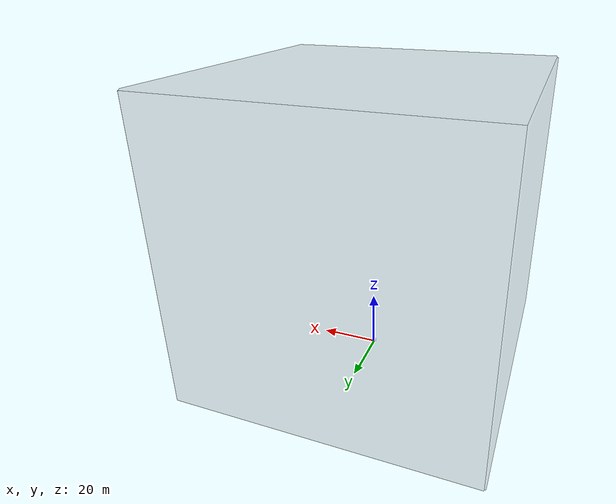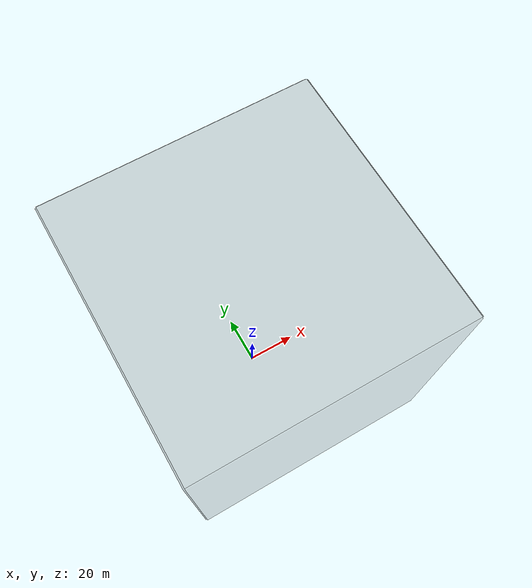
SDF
<sdf version="1.11">
 <world name="world_0">
  <model name="red_box">
   <static>false</static>
   <pose>0 0 0.5 0 0 0</pose>
   <link name="box_link">
    <inertial>
     <mass>1</mass>
     <inertia><ixx>1</ixx><ixy>0</ixy><ixz>0</ixz><iyy>1</iyy><iyz>0</iyz><izz>1</izz></inertia>
    </inertial>
    <collision name="box_collision">
     <geometry><box><size>1 1 1</size></box></geometry>
     <surface>
      <contact><collide_bitmask>255</collide_bitmask></contact>
      <friction><ode><mu>1</mu><mu2>1</mu2><slip1>0</slip1><slip2>0</slip2><fdir1>0 0 0</fdir1></ode></friction>
     </surface>
    </collision>
    <visual name="box_visual">
     <geometry><box><size>1 1 1</size></box></geometry>
     <visibility_flags>4294967295</visibility_flags>
     <material>
      <ambient>1 0 0 1</ambient>
      <diffuse>1 0 0 1</diffuse>
      <specular>1 0 0 1</specular>
      <emissive>0 0 0 1</emissive>
      <render_order>0</render_order>
      <lighting>true</lighting>
      <double_sided>false</double_sided>
      <shader type="pixel"/>
     </material>
    </visual>
   </link>
   <plugin name="gz::sim::systems::LogicalAudioSensorPlugin" filename="gz-sim-logicalaudiosensorplugin-system">
    <source>
     <id>1</id>
     <pose>.5 0 0 0 0 0</pose>
     <attenuation_function>linear</attenuation_function>
     <attenuation_shape>sphere</attenuation_shape>
     <inner_radius>1.0</inner_radius>
     <falloff_distance>5.0</falloff_distance>
     <volume_level>.8</volume_level>
     <playing>true</playing>
     <play_duration>10</play_duration>
    </source>
   </plugin>
  </model>
  <model name="ground_model">
   <static>true</static>
   <link name="ground_link">
    <inertial>
     <mass>1</mass>
     <inertia><ixx>1</ixx><ixy>0</ixy><ixz>0</ixz><iyy>1</iyy><iyz>0</iyz><izz>1</izz></inertia>
    </inertial>
    <collision name="ground_collision">
     <geometry><plane><normal>0 0 1</normal><size>100 100</size></plane></geometry>
     <surface>
      <contact><collide_bitmask>255</collide_bitmask></contact>
      <friction><ode><mu>1</mu><mu2>1</mu2><slip1>0</slip1><slip2>0</slip2><fdir1>0 0 0</fdir1></ode></friction>
     </surface>
    </collision>
   </link>
  </model>
  <model name="ceiling_model">
   <static>true</static>
   <pose>0 0 100 0 0 0</pose>
   <link name="ceiling_link">
    <inertial>
     <mass>1</mass>
     <inertia><ixx>1</ixx><ixy>0</ixy><ixz>0</ixz><iyy>1</iyy><iyz>0</iyz><izz>1</izz></inertia>
    </inertial>
    <collision name="ceiling_collision">
     <geometry><box><size>102 102 3</size></box></geometry>
     <surface>
      <contact><collide_bitmask>255</collide_bitmask></contact>
      <friction><ode><mu>1</mu><mu2>1</mu2><slip1>0</slip1><slip2>0</slip2><fdir1>0 0 0</fdir1></ode></friction>
     </surface>
    </collision>
    <visual name="ceiling_visual">
     <geometry><box><size>102 102 3</size></box></geometry>
     <visibility_flags>4294967295</visibility_flags>
     <material>
      <ambient>0.200000003 0.200000003 0.200000003 0.200000003</ambient>
      <diffuse>0.200000003 0.200000003 0.200000003 0.200000003</diffuse>
      <specular>0 0 0 1</specular>
      <emissive>0 0 0 1</emissive>
      <render_order>0</render_order>
      <lighting>true</lighting>
      <double_sided>false</double_sided>
      <shader type="pixel"/>
     </material>
    </visual>
   </link>
  </model>
  <model name="west_model">
   <static>true</static>
   <pose>0 50 50 0 0 0</pose>
   <link name="west_link">
    <inertial>
     <mass>1</mass>
     <inertia><ixx>1</ixx><ixy>0</ixy><ixz>0</ixz><iyy>1</iyy><iyz>0</iyz><izz>1</izz></inertia>
    </inertial>
    <collision name="west_collision">
     <geometry><box><size>102 3 102</size></box></geometry>
     <surface>
      <contact><collide_bitmask>255</collide_bitmask></contact>
      <friction><ode><mu>1</mu><mu2>1</mu2><slip1>0</slip1><slip2>0</slip2><fdir1>0 0 0</fdir1></ode></friction>
     </surface>
    </collision>
    <visual name="west_visual">
     <geometry><box><size>102 3 102</size></box></geometry>
     <visibility_flags>4294967295</visibility_flags>
     <material>
      <ambient>0.200000003 0.200000003 0.200000003 0.200000003</ambient>
      <diffuse>0.200000003 0.200000003 0.200000003 0.200000003</diffuse>
      <specular>0 0 0 1</specular>
      <emissive>0 0 0 1</emissive>
      <render_order>0</render_order>
      <lighting>true</lighting>
      <double_sided>false</double_sided>
      <shader type="pixel"/>
     </material>
    </visual>
   </link>
  </model>
  <model name="east_model">
   <static>true</static>
   <pose>0 -50 50 0 0 0</pose>
   <link name="east_link">
    <inertial>
     <mass>1</mass>
     <inertia><ixx>1</ixx><ixy>0</ixy><ixz>0</ixz><iyy>1</iyy><iyz>0</iyz><izz>1</izz></inertia>
    </inertial>
    <collision name="east_collision">
     <geometry><box><size>102 3 102</size></box></geometry>
     <surface>
      <contact><collide_bitmask>255</collide_bitmask></contact>
      <friction><ode><mu>1</mu><mu2>1</mu2><slip1>0</slip1><slip2>0</slip2><fdir1>0 0 0</fdir1></ode></friction>
     </surface>
    </collision>
    <visual name="east_visual">
     <geometry><box><size>102 3 102</size></box></geometry>
     <visibility_flags>4294967295</visibility_flags>
     <material>
      <ambient>0.200000003 0.200000003 0.200000003 0.200000003</ambient>
      <diffuse>0.200000003 0.200000003 0.200000003 0.200000003</diffuse>
      <specular>0 0 0 1</specular>
      <emissive>0 0 0 1</emissive>
      <render_order>0</render_order>
      <lighting>true</lighting>
      <double_sided>false</double_sided>
      <shader type="pixel"/>
     </material>
    </visual>
   </link>
  </model>
  <model name="north_model">
   <static>true</static>
   <pose>50 0 50 0 0 0</pose>
   <link name="north_link">
    <inertial>
     <mass>1</mass>
     <inertia><ixx>1</ixx><ixy>0</ixy><ixz>0</ixz><iyy>1</iyy><iyz>0</iyz><izz>1</izz></inertia>
    </inertial>
    <collision name="north_collision">
     <geometry><box><size>3 102 102</size></box></geometry>
     <surface>
      <contact><collide_bitmask>255</collide_bitmask></contact>
      <friction><ode><mu>1</mu><mu2>1</mu2><slip1>0</slip1><slip2>0</slip2><fdir1>0 0 0</fdir1></ode></friction>
     </surface>
    </collision>
    <visual name="north_visual">
     <geometry><box><size>3 102 102</size></box></geometry>
     <visibility_flags>4294967295</visibility_flags>
     <material>
      <ambient>0.200000003 0.200000003 0.200000003 0.200000003</ambient>
      <diffuse>0.200000003 0.200000003 0.200000003 0.200000003</diffuse>
      <specular>0 0 0 1</specular>
      <emissive>0 0 0 1</emissive>
      <render_order>0</render_order>
      <lighting>true</lighting>
      <double_sided>false</double_sided>
      <shader type="pixel"/>
     </material>
    </visual>
   </link>
  </model>
  <model name="south_model">
   <static>true</static>
   <pose>-50 0 50 0 0 0</pose>
   <link name="south_link">
    <inertial>
     <mass>1</mass>
     <inertia><ixx>1</ixx><ixy>0</ixy><ixz>0</ixz><iyy>1</iyy><iyz>0</iyz><izz>1</izz></inertia>
    </inertial>
    <collision name="south_collision">
     <geometry><box><size>3 102 102</size></box></geometry>
     <surface>
      <contact><collide_bitmask>255</collide_bitmask></contact>
      <friction><ode><mu>1</mu><mu2>1</mu2><slip1>0</slip1><slip2>0</slip2><fdir1>0 0 0</fdir1></ode></friction>
     </surface>
    </collision>
    <visual name="south_visual">
     <geometry><box><size>3 102 102</size></box></geometry>
     <visibility_flags>4294967295</visibility_flags>
     <material>
      <ambient>0.200000003 0.200000003 0.200000003 0.200000003</ambient>
      <diffuse>0.200000003 0.200000003 0.200000003 0.200000003</diffuse>
      <specular>0 0 0 1</specular>
      <emissive>0 0 0 1</emissive>
      <render_order>0</render_order>
      <lighting>true</lighting>
      <double_sided>false</double_sided>
      <shader type="pixel"/>
     </material>
    </visual>
   </link>
  </model>
 </world>
</sdf>
